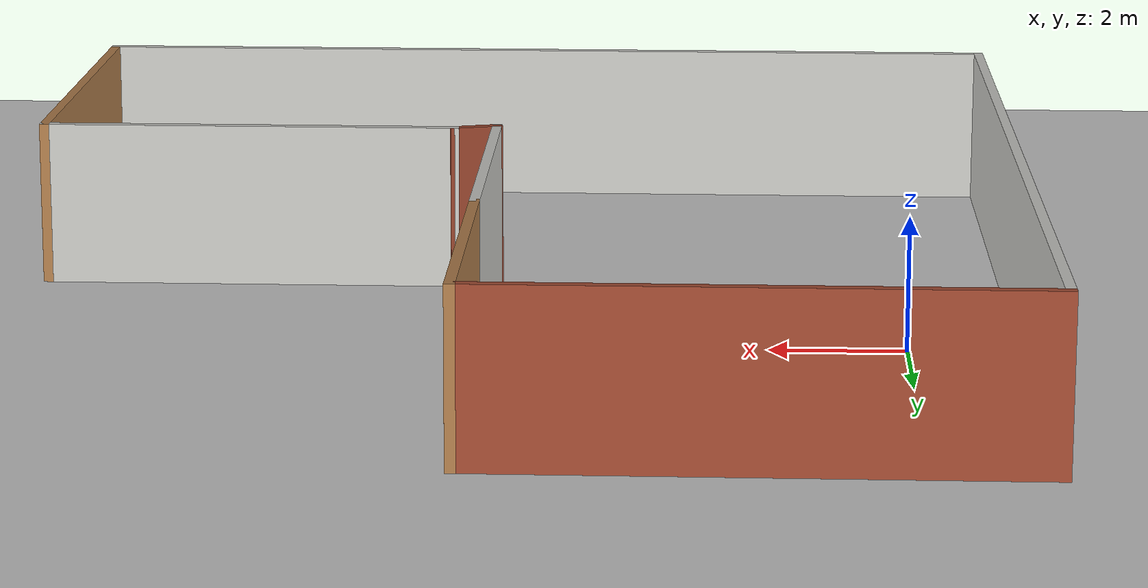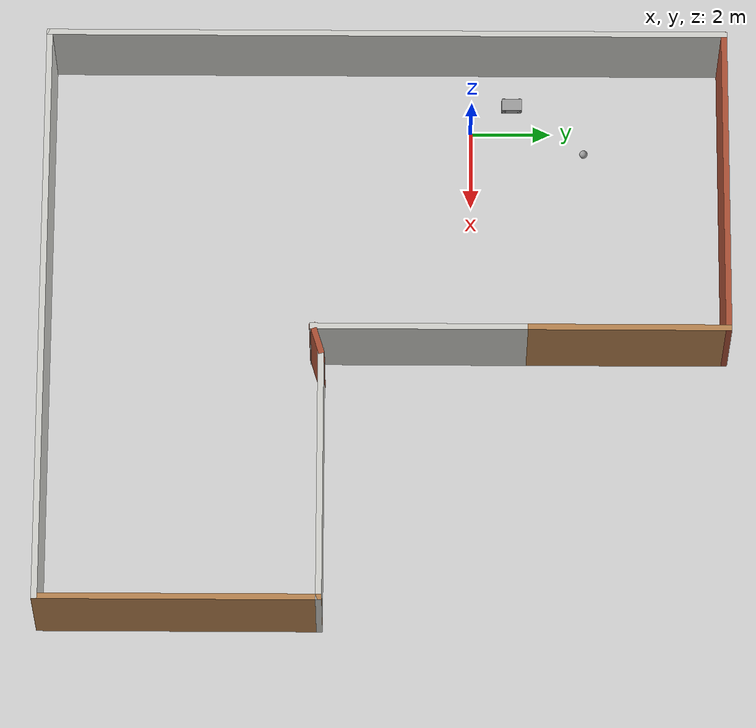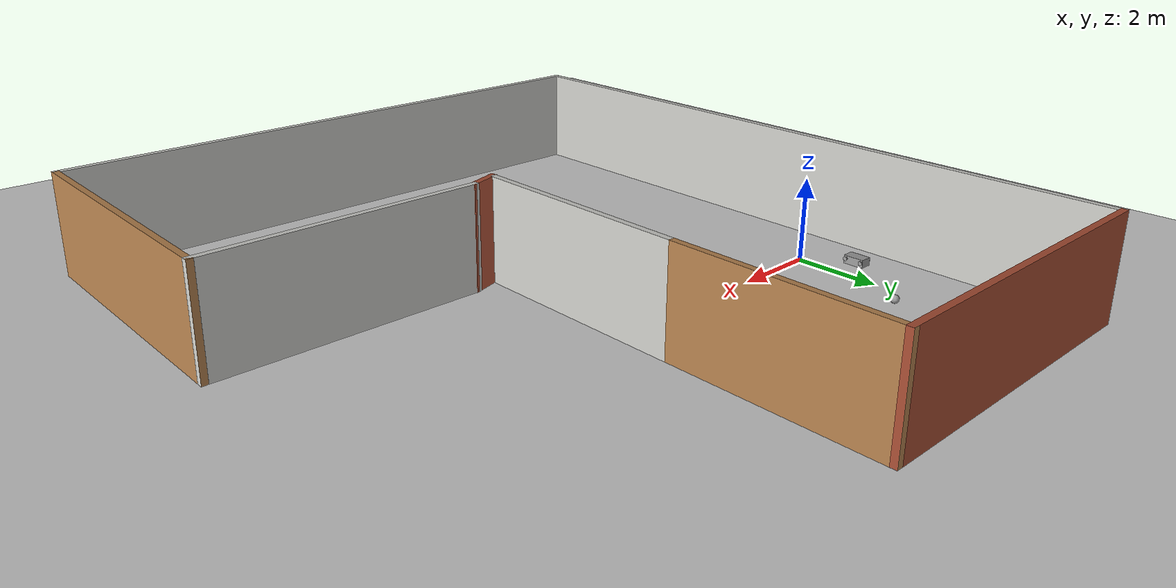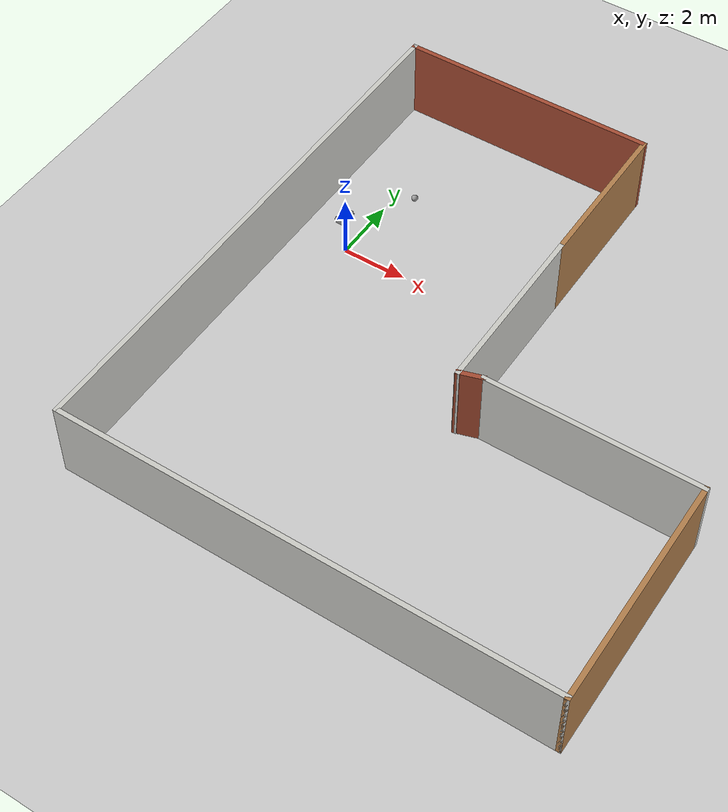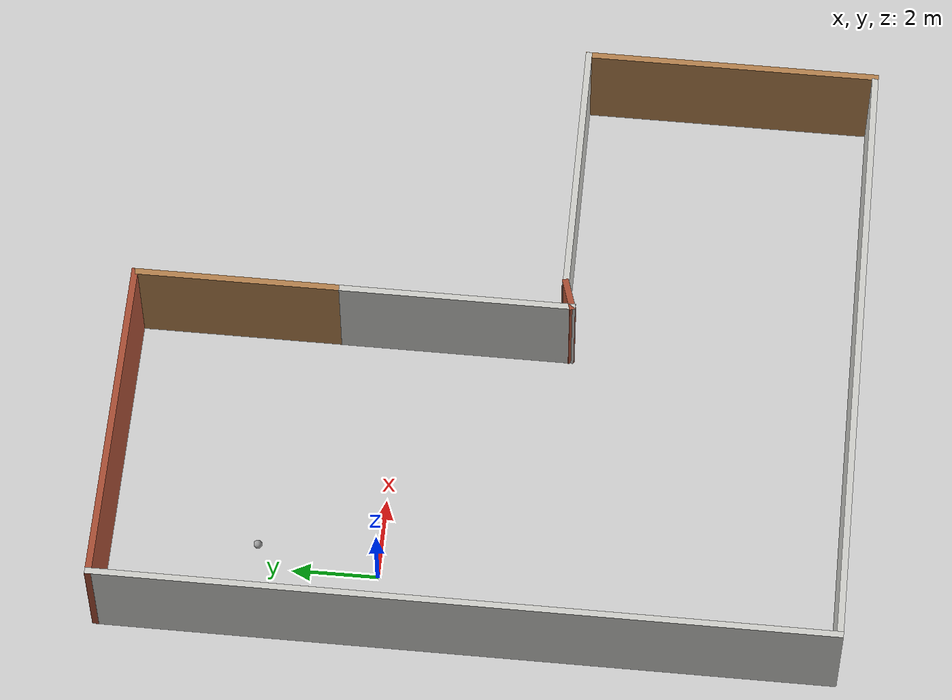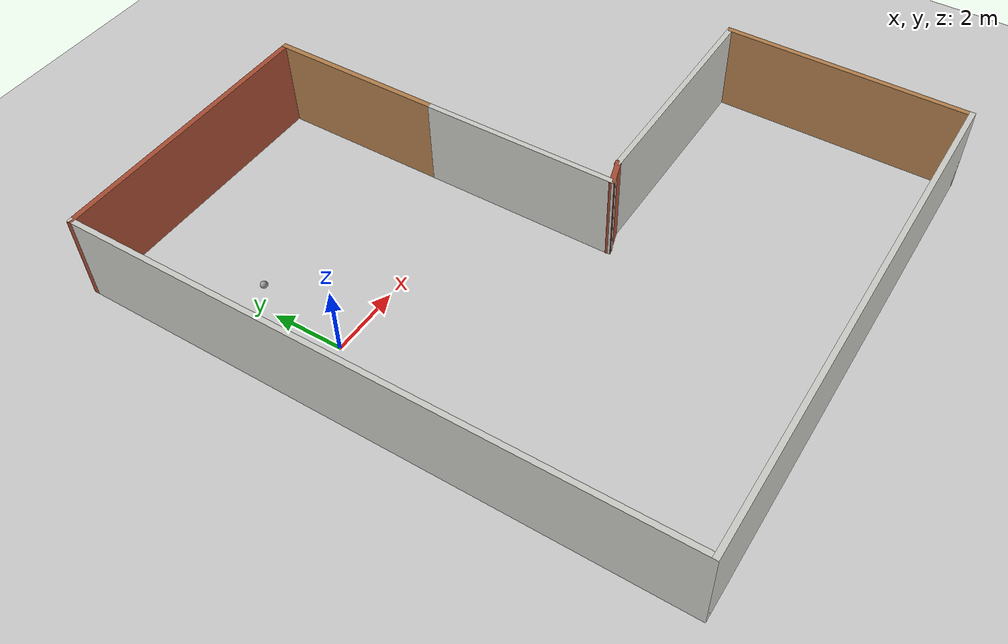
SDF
<sdf version="1.6">
 <world name="default">
  <model name="ground_plane">
   <static>1</static>
   <link name="link">
    <collision name="collision">
     <geometry><plane><normal>0 0 1</normal><size>100 100</size></plane></geometry>
     <surface>
      <contact><collide_bitmask>65535</collide_bitmask></contact>
      <friction><ode><mu>100</mu><mu2>50</mu2></ode></friction>
     </surface>
    </collision>
    <visual name="visual">
     <cast_shadows>0</cast_shadows>
     <geometry><plane><normal>0 0 1</normal><size>100 100</size></plane></geometry>
     <material>
      <script><uri>file://media/materials/scripts/gazebo.material</uri><name>Gazebo/Grey</name></script>
     </material>
    </visual>
   </link>
  </model>
  <model name="bot1">
   <link name="link_0">
    <pose>0 0 -0.016 0 -0 0</pose>
    <inertial>
     <mass>0.488879</mass>
     <inertia>
      <ixx>0.0504768</ixx>
      <ixy>0</ixy>
      <ixz>0</ixz>
      <iyy>0.0504768</iyy>
      <iyz>0</iyz>
      <izz>0.0814798</izz>
     </inertia>
    </inertial>
    <visual name="visual">
     <geometry><box><size>0.3 0.5 0.2</size></box></geometry>
     <material>
      <lighting>1</lighting>
      <script><uri>file://media/materials/scripts/gazebo.material</uri><name>Gazebo/Grey</name></script>
      <shader type="pixel"><normal_map>__default__</normal_map></shader>
      <ambient>0.3 0.3 0.3 1</ambient>
      <diffuse>0.7 0.7 0.7 1</diffuse>
      <specular>0.01 0.01 0.01 1</specular>
      <emissive>0 0 0 1</emissive>
     </material>
    </visual>
    <collision name="collision">
     <geometry><box><size>0.3 0.5 0.2</size></box></geometry>
     <surface>
      <friction>
       <ode><mu>1</mu><mu2>1</mu2><fdir1>0 0 0</fdir1><slip1>0</slip1><slip2>0</slip2></ode>
       <torsional>
        <coefficient>1</coefficient>
        <patch_radius>0</patch_radius>
        <surface_radius>0</surface_radius>
        <use_patch_radius>1</use_patch_radius>
        <ode><slip>0</slip></ode>
       </torsional>
      </friction>
      <bounce><restitution_coefficient>0</restitution_coefficient><threshold>1e+06</threshold></bounce>
      <contact>
       <collide_without_contact>0</collide_without_contact>
       <collide_without_contact_bitmask>1</collide_without_contact_bitmask>
       <collide_bitmask>1</collide_bitmask>
       <ode>
        <soft_cfm>0</soft_cfm>
        <soft_erp>0.2</soft_erp>
        <kp>1e+13</kp>
        <kd>1</kd>
        <max_vel>0.01</max_vel>
        <min_depth>0</min_depth>
       </ode>
       <bullet>
        <split_impulse>1</split_impulse>
        <split_impulse_penetration_threshold>-0.01</split_impulse_penetration_threshold>
        <soft_cfm>0</soft_cfm>
        <soft_erp>0.2</soft_erp>
        <kp>1e+13</kp>
        <kd>1</kd>
       </bullet>
      </contact>
     </surface>
    </collision>
   </link>
   <link name="link_1_clone">
    <pose>0.165005 0.2 0.004 0 1.5707 0</pose>
    <inertial>
     <mass>0.0014441</mass>
     <inertia>
      <ixx>2.41e-06</ixx>
      <ixy>0</ixy>
      <ixz>0</ixz>
      <iyy>2.41e-06</iyy>
      <iyz>0</iyz>
      <izz>3.05e-06</izz>
     </inertia>
    </inertial>
    <visual name="visual">
     <geometry><cylinder><radius>0.05</radius><length>0.03</length></cylinder></geometry>
     <material>
      <lighting>1</lighting>
      <script><uri>file://media/materials/scripts/gazebo.material</uri><name>Gazebo/Grey</name></script>
      <shader type="pixel"><normal_map>__default__</normal_map></shader>
      <ambient>0.3 0.3 0.3 1</ambient>
      <diffuse>0.7 0.7 0.7 1</diffuse>
      <specular>0.01 0.01 0.01 1</specular>
      <emissive>0 0 0 1</emissive>
     </material>
    </visual>
    <collision name="collision">
     <geometry><cylinder><radius>0.05</radius><length>0.03</length></cylinder></geometry>
     <surface>
      <friction>
       <ode><mu>1</mu><mu2>1</mu2><fdir1>0 0 0</fdir1><slip1>0</slip1><slip2>0</slip2></ode>
       <torsional>
        <coefficient>1</coefficient>
        <patch_radius>0</patch_radius>
        <surface_radius>0</surface_radius>
        <use_patch_radius>1</use_patch_radius>
        <ode><slip>0</slip></ode>
       </torsional>
      </friction>
      <bounce><restitution_coefficient>0</restitution_coefficient><threshold>1e+06</threshold></bounce>
      <contact>
       <collide_without_contact>0</collide_without_contact>
       <collide_without_contact_bitmask>1</collide_without_contact_bitmask>
       <collide_bitmask>1</collide_bitmask>
       <ode>
        <soft_cfm>0</soft_cfm>
        <soft_erp>0.2</soft_erp>
        <kp>1e+13</kp>
        <kd>1</kd>
        <max_vel>0.01</max_vel>
        <min_depth>0</min_depth>
       </ode>
       <bullet>
        <split_impulse>1</split_impulse>
        <split_impulse_penetration_threshold>-0.01</split_impulse_penetration_threshold>
        <soft_cfm>0</soft_cfm>
        <soft_erp>0.2</soft_erp>
        <kp>1e+13</kp>
        <kd>1</kd>
       </bullet>
      </contact>
     </surface>
    </collision>
   </link>
   <link name="link_1_clone_0">
    <pose>-0.165005 0.2 0.004 0 1.5707 0</pose>
    <inertial>
     <mass>0.0014441</mass>
     <inertia>
      <ixx>2.41e-06</ixx>
      <ixy>0</ixy>
      <ixz>0</ixz>
      <iyy>2.41e-06</iyy>
      <iyz>0</iyz>
      <izz>3.05e-06</izz>
     </inertia>
    </inertial>
    <visual name="visual">
     <geometry><cylinder><radius>0.05</radius><length>0.03</length></cylinder></geometry>
     <material>
      <lighting>1</lighting>
      <script><uri>file://media/materials/scripts/gazebo.material</uri><name>Gazebo/Grey</name></script>
      <shader type="pixel"><normal_map>__default__</normal_map></shader>
      <ambient>0.3 0.3 0.3 1</ambient>
      <diffuse>0.7 0.7 0.7 1</diffuse>
      <specular>0.01 0.01 0.01 1</specular>
      <emissive>0 0 0 1</emissive>
     </material>
    </visual>
    <collision name="collision">
     <geometry><cylinder><radius>0.05</radius><length>0.03</length></cylinder></geometry>
     <surface>
      <friction>
       <ode><mu>1</mu><mu2>1</mu2><fdir1>0 0 0</fdir1><slip1>0</slip1><slip2>0</slip2></ode>
       <torsional>
        <coefficient>1</coefficient>
        <patch_radius>0</patch_radius>
        <surface_radius>0</surface_radius>
        <use_patch_radius>1</use_patch_radius>
        <ode><slip>0</slip></ode>
       </torsional>
      </friction>
      <bounce><restitution_coefficient>0</restitution_coefficient><threshold>1e+06</threshold></bounce>
      <contact>
       <collide_without_contact>0</collide_without_contact>
       <collide_without_contact_bitmask>1</collide_without_contact_bitmask>
       <collide_bitmask>1</collide_bitmask>
       <ode>
        <soft_cfm>0</soft_cfm>
        <soft_erp>0.2</soft_erp>
        <kp>1e+13</kp>
        <kd>1</kd>
        <max_vel>0.01</max_vel>
        <min_depth>0</min_depth>
       </ode>
       <bullet>
        <split_impulse>1</split_impulse>
        <split_impulse_penetration_threshold>-0.01</split_impulse_penetration_threshold>
        <soft_cfm>0</soft_cfm>
        <soft_erp>0.2</soft_erp>
        <kp>1e+13</kp>
        <kd>1</kd>
       </bullet>
      </contact>
     </surface>
    </collision>
   </link>
   <link name="link_1_clone_1">
    <pose>-0.165005 -0.2 0.004 0 1.5707 0</pose>
    <inertial>
     <mass>0.0014441</mass>
     <inertia>
      <ixx>2.41e-06</ixx>
      <ixy>0</ixy>
      <ixz>0</ixz>
      <iyy>2.41e-06</iyy>
      <iyz>0</iyz>
      <izz>3.05e-06</izz>
     </inertia>
    </inertial>
    <visual name="visual">
     <geometry><cylinder><radius>0.05</radius><length>0.03</length></cylinder></geometry>
     <material>
      <lighting>1</lighting>
      <script><uri>file://media/materials/scripts/gazebo.material</uri><name>Gazebo/Grey</name></script>
      <shader type="pixel"><normal_map>__default__</normal_map></shader>
      <ambient>0.3 0.3 0.3 1</ambient>
      <diffuse>0.7 0.7 0.7 1</diffuse>
      <specular>0.01 0.01 0.01 1</specular>
      <emissive>0 0 0 1</emissive>
     </material>
    </visual>
    <collision name="collision">
     <geometry><cylinder><radius>0.05</radius><length>0.03</length></cylinder></geometry>
     <surface>
      <friction>
       <ode><mu>1</mu><mu2>1</mu2><fdir1>0 0 0</fdir1><slip1>0</slip1><slip2>0</slip2></ode>
       <torsional>
        <coefficient>1</coefficient>
        <patch_radius>0</patch_radius>
        <surface_radius>0</surface_radius>
        <use_patch_radius>1</use_patch_radius>
        <ode><slip>0</slip></ode>
       </torsional>
      </friction>
      <bounce><restitution_coefficient>0</restitution_coefficient><threshold>1e+06</threshold></bounce>
      <contact>
       <collide_without_contact>0</collide_without_contact>
       <collide_without_contact_bitmask>1</collide_without_contact_bitmask>
       <collide_bitmask>1</collide_bitmask>
       <ode>
        <soft_cfm>0</soft_cfm>
        <soft_erp>0.2</soft_erp>
        <kp>1e+13</kp>
        <kd>1</kd>
        <max_vel>0.01</max_vel>
        <min_depth>0</min_depth>
       </ode>
       <bullet>
        <split_impulse>1</split_impulse>
        <split_impulse_penetration_threshold>-0.01</split_impulse_penetration_threshold>
        <soft_cfm>0</soft_cfm>
        <soft_erp>0.2</soft_erp>
        <kp>1e+13</kp>
        <kd>1</kd>
       </bullet>
      </contact>
     </surface>
    </collision>
   </link>
   <link name="link_1_clone_clone">
    <pose>0.165005 -0.2 0.004 0 1.5707 0</pose>
    <inertial>
     <mass>0.0014441</mass>
     <inertia>
      <ixx>2.41e-06</ixx>
      <ixy>0</ixy>
      <ixz>0</ixz>
      <iyy>2.41e-06</iyy>
      <iyz>0</iyz>
      <izz>3.05e-06</izz>
     </inertia>
    </inertial>
    <visual name="visual">
     <geometry><cylinder><radius>0.05</radius><length>0.03</length></cylinder></geometry>
     <material>
      <lighting>1</lighting>
      <script><uri>file://media/materials/scripts/gazebo.material</uri><name>Gazebo/Grey</name></script>
      <shader type="pixel"><normal_map>__default__</normal_map></shader>
      <ambient>0.3 0.3 0.3 1</ambient>
      <diffuse>0.7 0.7 0.7 1</diffuse>
      <specular>0.01 0.01 0.01 1</specular>
      <emissive>0 0 0 1</emissive>
     </material>
    </visual>
    <collision name="collision">
     <geometry><cylinder><radius>0.05</radius><length>0.03</length></cylinder></geometry>
     <surface>
      <friction>
       <ode><mu>1</mu><mu2>1</mu2><fdir1>0 0 0</fdir1><slip1>0</slip1><slip2>0</slip2></ode>
       <torsional>
        <coefficient>1</coefficient>
        <patch_radius>0</patch_radius>
        <surface_radius>0</surface_radius>
        <use_patch_radius>1</use_patch_radius>
        <ode><slip>0</slip></ode>
       </torsional>
      </friction>
      <bounce><restitution_coefficient>0</restitution_coefficient><threshold>1e+06</threshold></bounce>
      <contact>
       <collide_without_contact>0</collide_without_contact>
       <collide_without_contact_bitmask>1</collide_without_contact_bitmask>
       <collide_bitmask>1</collide_bitmask>
       <ode>
        <soft_cfm>0</soft_cfm>
        <soft_erp>0.2</soft_erp>
        <kp>1e+13</kp>
        <kd>1</kd>
        <max_vel>0.01</max_vel>
        <min_depth>0</min_depth>
       </ode>
       <bullet>
        <split_impulse>1</split_impulse>
        <split_impulse_penetration_threshold>-0.01</split_impulse_penetration_threshold>
        <soft_cfm>0</soft_cfm>
        <soft_erp>0.2</soft_erp>
        <kp>1e+13</kp>
        <kd>1</kd>
       </bullet>
      </contact>
     </surface>
    </collision>
   </link>
   <joint name="link_0_JOINT_3" type="revolute">
    <parent>link_0</parent>
    <child>link_1_clone</child>
    <axis>
     <xyz>0 0 1</xyz>
     <use_parent_model_frame>0</use_parent_model_frame>
     <limit>
      <lower>-1.79769e+308</lower>
      <upper>1.79769e+308</upper>
      <effort>-1</effort>
      <velocity>-1</velocity>
     </limit>
     <dynamics>
      <spring_reference>0</spring_reference>
      <spring_stiffness>0</spring_stiffness>
      <damping>0</damping>
      <friction>0</friction>
     </dynamics>
    </axis>
    <physics>
     <ode><limit><cfm>0</cfm><erp>0.2</erp></limit><suspension><cfm>0</cfm><erp>0.2</erp></suspension></ode>
    </physics>
   </joint>
   <joint name="link_0_JOINT_4" type="revolute">
    <parent>link_0</parent>
    <child>link_1_clone_clone</child>
    <axis>
     <xyz>0 0 1</xyz>
     <use_parent_model_frame>0</use_parent_model_frame>
     <limit>
      <lower>-1.79769e+308</lower>
      <upper>1.79769e+308</upper>
      <effort>-1</effort>
      <velocity>-1</velocity>
     </limit>
     <dynamics>
      <spring_reference>0</spring_reference>
      <spring_stiffness>0</spring_stiffness>
      <damping>0</damping>
      <friction>0</friction>
     </dynamics>
    </axis>
    <physics>
     <ode><limit><cfm>0</cfm><erp>0.2</erp></limit><suspension><cfm>0</cfm><erp>0.2</erp></suspension></ode>
    </physics>
   </joint>
   <joint name="link_0_JOINT_5" type="revolute">
    <parent>link_0</parent>
    <child>link_1_clone_1</child>
    <axis>
     <xyz>0 0 -1</xyz>
     <use_parent_model_frame>0</use_parent_model_frame>
     <limit>
      <lower>-1.79769e+308</lower>
      <upper>1.79769e+308</upper>
      <effort>-1</effort>
      <velocity>-1</velocity>
     </limit>
     <dynamics>
      <spring_reference>0</spring_reference>
      <spring_stiffness>0</spring_stiffness>
      <damping>0</damping>
      <friction>0</friction>
     </dynamics>
    </axis>
    <physics>
     <ode><limit><cfm>0</cfm><erp>0.2</erp></limit><suspension><cfm>0</cfm><erp>0.2</erp></suspension></ode>
    </physics>
   </joint>
   <joint name="link_0_JOINT_6" type="revolute">
    <parent>link_0</parent>
    <child>link_1_clone_0</child>
    <axis>
     <xyz>0 0 -1</xyz>
     <use_parent_model_frame>0</use_parent_model_frame>
     <limit>
      <lower>-1.79769e+308</lower>
      <upper>1.79769e+308</upper>
      <effort>-1</effort>
      <velocity>-1</velocity>
     </limit>
     <dynamics>
      <spring_reference>0</spring_reference>
      <spring_stiffness>0</spring_stiffness>
      <damping>0</damping>
      <friction>0</friction>
     </dynamics>
    </axis>
    <physics>
     <ode><limit><cfm>0</cfm><erp>0.2</erp></limit><suspension><cfm>0</cfm><erp>0.2</erp></suspension></ode>
    </physics>
   </joint>
   <static>0</static>
   <pose>-0.752445 1.03246 0.116 0 -0 0.000885</pose>
  </model>
  <model name="my_ball">
   <link name="link_0">
    <inertial>
     <mass>1</mass>
     <inertia><ixx>0.1</ixx><ixy>0</ixy><ixz>0</ixz><iyy>0.1</iyy><iyz>0</iyz><izz>0.1</izz></inertia>
    </inertial>
    <visual name="visual">
     <geometry><sphere><radius>0.1</radius></sphere></geometry>
     <material>
      <lighting>1</lighting>
      <script><uri>file://media/materials/scripts/gazebo.material</uri><name>Gazebo/Grey</name></script>
      <shader type="pixel"><normal_map>__default__</normal_map></shader>
      <ambient>1 1 1 1</ambient>
      <diffuse>1 1 1 1</diffuse>
      <specular>1 1 1 1</specular>
      <emissive>1 1 1 1</emissive>
     </material>
    </visual>
    <collision name="collision">
     <geometry><sphere><radius>0.1</radius></sphere></geometry>
     <surface>
      <friction>
       <ode><mu>1</mu><mu2>1</mu2><fdir1>0 0 0</fdir1><slip1>0</slip1><slip2>0</slip2></ode>
       <torsional>
        <coefficient>1</coefficient>
        <patch_radius>0</patch_radius>
        <surface_radius>0</surface_radius>
        <use_patch_radius>1</use_patch_radius>
        <ode><slip>0</slip></ode>
       </torsional>
      </friction>
      <bounce><restitution_coefficient>0</restitution_coefficient><threshold>1e+06</threshold></bounce>
      <contact>
       <collide_without_contact>0</collide_without_contact>
       <collide_without_contact_bitmask>1</collide_without_contact_bitmask>
       <collide_bitmask>1</collide_bitmask>
       <ode>
        <soft_cfm>0</soft_cfm>
        <soft_erp>0.2</soft_erp>
        <kp>1e+13</kp>
        <kd>1</kd>
        <max_vel>0.01</max_vel>
        <min_depth>0</min_depth>
       </ode>
       <bullet>
        <split_impulse>1</split_impulse>
        <split_impulse_penetration_threshold>-0.01</split_impulse_penetration_threshold>
        <soft_cfm>0</soft_cfm>
        <soft_erp>0.2</soft_erp>
        <kp>1e+13</kp>
        <kd>1</kd>
       </bullet>
      </contact>
     </surface>
    </collision>
   </link>
   <static>0</static>
   <pose>0.563926 2.8413 0.1 0 -0 0</pose>
  </model>
  <model name="Lbuilding">
   <pose>5.73634 -2.12948 0 0 -0 0</pose>
   <link name="Wall_10">
    <collision name="Wall_10_Collision">
     <geometry><box><size>6.5 0.15 2.5</size></box></geometry>
     <pose>0 0 1.25 0 -0 0</pose>
    </collision>
    <visual name="Wall_10_Visual">
     <pose>0 0 1.25 0 -0 0</pose>
     <geometry><box><size>6.5 0.15 2.5</size></box></geometry>
     <material>
      <script><uri>file://media/materials/scripts/gazebo.material</uri><name>Gazebo/CeilingTiled</name></script>
      <ambient>0.435294 0.796078 0.67451 1</ambient>
     </material>
     <meta><layer>0</layer></meta>
    </visual>
    <pose>4.25 -1.575 0 0 -0 3.14159</pose>
   </link>
   <link name="Wall_11">
    <collision name="Wall_11_Collision">
     <geometry><box><size>0.830074 0.15 2.5</size></box></geometry>
     <pose>0 0 1.25 0 -0 0</pose>
    </collision>
    <visual name="Wall_11_Visual">
     <pose>0 0 1.25 0 -0 0</pose>
     <geometry><box><size>0.830074 0.15 2.5</size></box></geometry>
     <material>
      <script><uri>file://media/materials/scripts/gazebo.material</uri><name>Gazebo/Bricks</name></script>
      <ambient>1 1 1 1</ambient>
     </material>
     <meta><layer>0</layer></meta>
    </visual>
    <pose>0.75 -1.675 0 0 0 -2.84309</pose>
   </link>
   <link name="Wall_4">
    <collision name="Wall_4_Collision">
     <geometry><box><size>5.5 0.15 2.5</size></box></geometry>
     <pose>0 0 1.25 0 -0 0</pose>
    </collision>
    <visual name="Wall_4_Visual">
     <pose>0 0 1.25 0 -0 0</pose>
     <geometry><box><size>5.5 0.15 2.5</size></box></geometry>
     <material>
      <script><uri>file://media/materials/scripts/gazebo.material</uri><name>Gazebo/CeilingTiled</name></script>
      <ambient>0.921569 0.807843 0.615686 1</ambient>
     </material>
     <meta><layer>0</layer></meta>
    </visual>
    <pose>0.425 0.9 0 0 -0 1.5708</pose>
   </link>
   <link name="Wall_5">
    <collision name="Wall_5_Collision">
     <geometry><box><size>5 0.15 2.5</size></box></geometry>
     <pose>0 0 1.25 0 -0 0</pose>
    </collision>
    <visual name="Wall_5_Visual">
     <pose>0 0 1.25 0 -0 0</pose>
     <geometry><box><size>5 0.15 2.5</size></box></geometry>
     <material>
      <script><uri>file://media/materials/scripts/gazebo.material</uri><name>Gazebo/Wood</name></script>
      <ambient>1 1 1 1</ambient>
     </material>
     <meta><layer>0</layer></meta>
    </visual>
    <pose>0.425 6 0 0 -0 1.5708</pose>
   </link>
   <link name="Wall_6">
    <collision name="Wall_6_Collision">
     <geometry><box><size>8 0.15 2.5</size></box></geometry>
     <pose>0 0 1.25 0 -0 0</pose>
    </collision>
    <visual name="Wall_6_Visual">
     <pose>0 0 1.25 0 -0 0</pose>
     <geometry><box><size>8 0.15 2.5</size></box></geometry>
     <material>
      <script><uri>file://media/materials/scripts/gazebo.material</uri><name>Gazebo/Bricks</name></script>
      <ambient>1 1 1 1</ambient>
     </material>
     <meta><layer>0</layer></meta>
    </visual>
    <pose>-3.5 8.425 0 0 -0 3.14159</pose>
   </link>
   <link name="Wall_7">
    <collision name="Wall_7_Collision">
     <geometry><box><size>17 0.15 2.5</size></box></geometry>
     <pose>0 0 1.25 0 -0 0</pose>
    </collision>
    <visual name="Wall_7_Visual">
     <pose>0 0 1.25 0 -0 0</pose>
     <geometry><box><size>17 0.15 2.5</size></box></geometry>
     <material>
      <script><uri>file://media/materials/scripts/gazebo.material</uri><name>Gazebo/CeilingTiled</name></script>
      <ambient>0.333333 0.666667 1 1</ambient>
     </material>
     <meta><layer>0</layer></meta>
    </visual>
    <pose>-7.425 0 0 0 0 -1.5708</pose>
   </link>
   <link name="Wall_8">
    <collision name="Wall_8_Collision">
     <geometry><box><size>15 0.15 2.5</size></box></geometry>
     <pose>0 0 1.25 0 -0 0</pose>
    </collision>
    <visual name="Wall_8_Visual">
     <pose>0 0 1.25 0 -0 0</pose>
     <geometry><box><size>15 0.15 2.5</size></box></geometry>
     <material>
      <script><uri>file://media/materials/scripts/gazebo.material</uri><name>Gazebo/CeilingTiled</name></script>
      <ambient>1 0.764706 0.305882 1</ambient>
     </material>
     <meta><layer>0</layer></meta>
    </visual>
    <pose>0 -8.425 0 0 -0 0</pose>
   </link>
   <link name="Wall_9">
    <collision name="Wall_9_Collision">
     <geometry><box><size>7 0.15 2.5</size></box></geometry>
     <pose>0 0 1.25 0 -0 0</pose>
    </collision>
    <visual name="Wall_9_Visual">
     <pose>0 0 1.25 0 -0 0</pose>
     <geometry><box><size>7 0.15 2.5</size></box></geometry>
     <material>
      <script><uri>file://media/materials/scripts/gazebo.material</uri><name>Gazebo/Wood</name></script>
      <ambient>1 1 1 1</ambient>
     </material>
     <meta><layer>0</layer></meta>
    </visual>
    <pose>7.425 -5 0 0 -0 1.5708</pose>
   </link>
   <static>1</static>
  </model>
 </world>
</sdf>
